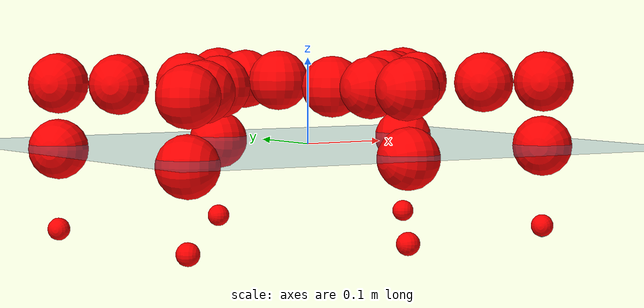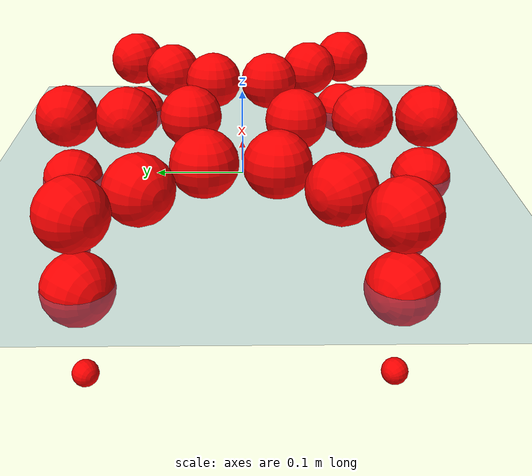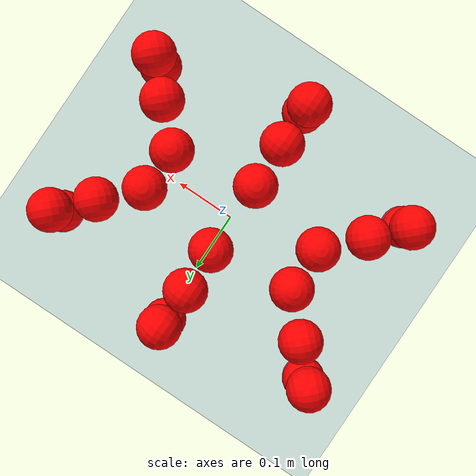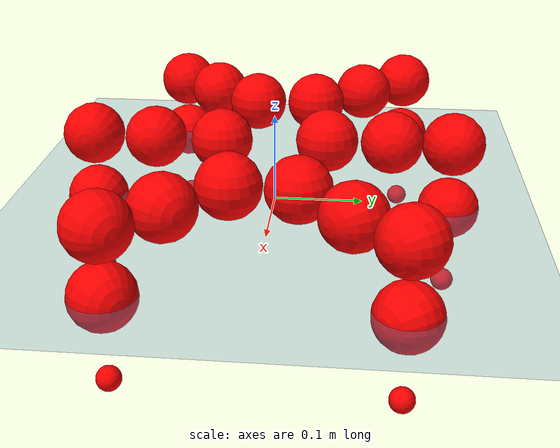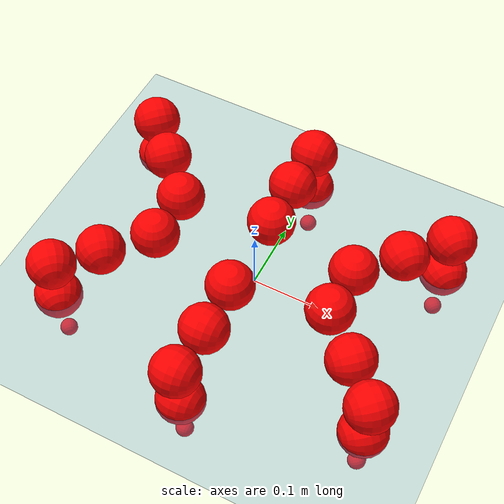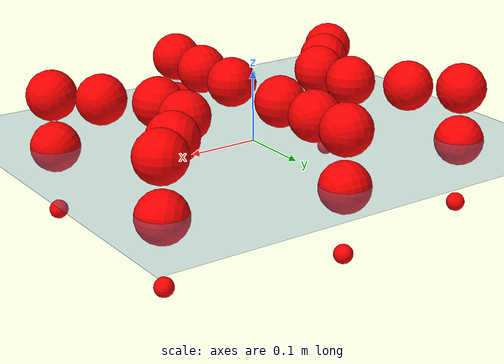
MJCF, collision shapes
<mujoco model="Golem">
  <compiler angle="radian" assetdir="assets" balanceinertia="true" inertiafromgeom="false"/>

  <option timestep="0.005" density="1.2" viscosity="2e-05"/>

  <size nkey="1"/>

  <visual>
    <quality shadowsize="8192"/>
    <map shadowclip="0.5"/>
  </visual>

  <default>
    <default class="/">
      <joint armature="0.01" damping="0.01" frictionloss="0.01"/>
      <geom contype="0" conaffinity="0" group="1" solref="-1000 -80"/>
      <site size="0.01 0.005 0.005" group="5"/>
      <general forcelimited="true" biastype="affine" gainprm="25" biasprm="0 -25 -0.5"/>
      <default class="visual">
        <geom type="mesh" group="2"/>
      </default>
      <default class="collision">
        <geom group="3"/>
      </default>
      <default class="foot">
        <geom size="0.01 0 0" condim="6" group="4" priority="1" solimp="0.015 1 0.01"/>
      </default>
      <default class="reward_collision_sphere">
        <geom group="5" rgba="1 0 0 1"/>
      </default>
    </default>
  </default>

  <asset>
    <texture type="skybox" colorspace="auto" name="//unnamed_texture_0" builtin="gradient" rgb1="0.95 0.95 0.95" rgb2="0.95 0.95 0.95" width="100" height="600"/>
    <texture type="2d" colorspace="auto" name="texplane" builtin="checker" rgb1="0.345 0.575 0.748" rgb2="0.345 0.575 0.748" markrgb="1 1 1" width="512" height="512"/>
    <material name="MatPlane" class="/" texture="texplane" texuniform="true" texrepeat="2 2" specular="0.9"/>
    <mesh name="body" class="/" file="body.stl" scale="0.001 0.001 0.001"/>
    <mesh name="coxa" class="/" file="coxa.stl" scale="0.001 0.001 0.001"/>
    <mesh name="femur" class="/" file="femur.stl" scale="0.001 0.001 0.001"/>
    <mesh name="tibia" class="/" file="tibia.stl" scale="0.001 0.001 0.001"/>
    <mesh name="tarsus" class="/" file="tarsus.stl" scale="0.001 0.001 0.001"/>
  </asset>

  <worldbody>
    <geom name="floor" class="/" size="100 100 0.125" type="plane" group="0" material="MatPlane"/>
    <light name="toplight_shadow" class="/" pos="0 0 5" dir="0.0990148 0.0990148 -0.990148" type="directional" ambient="0.04 0.04 0.04" diffuse="0.55 0.55 0.55" specular="0.12 0.12 0.12"/>
    <light name="toplight_fill" class="/" pos="0 0 5" dir="0.0990148 0.0990148 -0.990148" type="directional" castshadow="false" ambient="0.04 0.04 0.04" diffuse="0.3 0.3 0.3" specular="0.08 0.08 0.08"/>
    <body name="trunk" pos="-0.00245568 0.000187161 0.000119301" quat="0.999999 -0.000303348 -0.00023536 -0.00127203">
      <inertial pos="0.00157302 0.00220546 9.6021e-05" quat="0.999968 0.00705175 -0.00156519 -0.00329264" mass="2.3944" diaginertia="0.00473925 0.00133922 0.0148576"/>
      <joint name="//unnamed_joint_0" type="free"/>
      <geom name="//unnamed_geom_1" class="/" pos="0 0 0.06992" quat="1 0 0 0" type="mesh" rgba="0.9 0.9 0.9 1" mesh="body"/>
      <site name="imu" class="/" pos="0.110376 0.0135297 0.103043" size="0.00877103"/>
      <camera name="track" class="/" pos="0 -1.33911 0" quat="0.707107 0.707107 0 0" mode="trackcom"/>
      <camera name="ego_camera" class="/" pos="0.113003 0 0.10925" quat="-0.5 -0.5 0.5 0.5"/>
      <body name="coxa_RR" pos="-0.15517 -0.0529119 0.0704342" quat="0.381882 -0.000625176 0.000874433 -0.924211">
        <inertial pos="0.00200286 0.00079195 0.00116257" quat="0.999929 0.00916622 -0.00626631 0.00435249" mass="0.144001" diaginertia="0.00514966 0.00139251 0.0161702"/>
        <joint name="coxa_joint_RR" class="/" pos="0 0 0" axis="-0.00199772 0.00124281 -0.999997" range="-3.14133 3.09063" armature="0.00985987" damping="0.0172816" frictionloss="0.00889737"/>
        <geom name="//unnamed_geom_2" class="/" type="mesh" rgba="0.2 0.2 0.2 1" mesh="coxa"/>
        <geom name="//unnamed_geom_3" class="reward_collision_sphere" size="0.0350841" pos="-0.0260776 0 0"/>
        <body name="femur_RR" pos="0.0528913 0.00298686 -0.00266721" quat="0.500135 -0.499083 0.500037 0.500743">
          <inertial pos="0.00277745 0.0005269 -0.000759061" quat="0.999907 -0.00179715 -0.0134123 0.0019414" mass="0.137227" diaginertia="0.00504856 0.00136996 0.0156684"/>
          <joint name="femur_joint_RR" class="/" pos="0 0 0" axis="-0.00232056 9.20813e-06 -0.999997" stiffness="0.00950639" range="-3.10532 3.0991" armature="0.00886495" damping="0.0121243" frictionloss="0.00903506"/>
          <geom name="//unnamed_geom_4" class="/" type="mesh" rgba="0.9 0.9 0.9 1" mesh="femur"/>
          <geom name="//unnamed_geom_5" class="reward_collision_sphere" size="0.0350841"/>
          <body name="tibia_RR" pos="0.00204057 -0.0699695 0.00247879" quat="0.000785434 1 -0.000343568 -1.69832e-05">
            <inertial pos="-0.00254352 -0.000928759 0.000146455" quat="0.999994 0.0024825 0.000959275 0.00225618" mass="0.139803" diaginertia="0.00502383 0.00135867 0.0161577"/>
            <joint name="tibia_joint_RR" class="/" pos="0 0 0" axis="0.00456831 -0.0135781 0.999897" stiffness="0.00934786" range="-3.14827 3.12781" armature="0.00883185" damping="0.000543778" frictionloss="0.00901517"/>
            <geom name="//unnamed_geom_6" class="/" type="mesh" rgba="0.2 0.2 0.2 1" mesh="tibia"/>
            <geom name="//unnamed_geom_7" class="reward_collision_sphere" size="0.0350841"/>
            <body name="tarsus_RR" pos="0.0748262 0.00270479 -0.000104512" quat="1 -0.00078793 3.26891e-05 0.000342102">
              <inertial pos="0.0524059 0.000649048 -0.000333707" quat="0.499934 0.500911 0.499664 0.49949" mass="0.139361" diaginertia="0.00519912 0.00139358 0.0161298"/>
              <joint name="tarsus_joint_RR" class="/" pos="0 0 0" axis="0.000281348 -0.000600129 1" range="-3.14115 3.13832" armature="0.00839311" damping="0.0407962" frictionloss="0.00761501"/>
              <geom name="//unnamed_geom_8" class="/" type="mesh" rgba="0.9 0.9 0.9 1" mesh="tarsus"/>
              <geom name="foot_1" class="foot" size="0.00916976" pos="0.0973564 0 0" quat="0 -0.707107 0 0.707107"/>
              <geom name="//unnamed_geom_10" class="reward_collision_sphere" size="0.0350841"/>
              <geom name="//unnamed_geom_11" class="reward_collision_sphere" size="0.0131565" pos="0.0934448 0 0"/>
              <site name="foot_1" class="foot" pos="0.0973564 0 0" quat="0 -0.707107 0 0.707107" size="0.00877103"/>
            </body>
          </body>
        </body>
      </body>
      <body name="coxa_RM" pos="-0.00290932 -0.0872545 0.0683021" quat="0.707109 2.17078e-05 -1.03716e-05 -0.707104">
        <inertial pos="-0.00267375 0.000181991 0.00128686" quat="0.999996 0.000939406 -0.00196093 0.00174125" mass="0.138953" diaginertia="0.00506577 0.00141203 0.0161919"/>
        <joint name="coxa_joint_RM" class="/" pos="0 0 0" axis="0.000161282 0.000232664 -1" range="-3.08714 3.14347" armature="0.00987614" damping="0.0150854" frictionloss="0.00853289"/>
        <geom name="//unnamed_geom_12" class="/" type="mesh" rgba="0.2 0.2 0.2 1" mesh="coxa"/>
        <geom name="//unnamed_geom_13" class="reward_collision_sphere" size="0.0350841" pos="-0.0260776 0 0"/>
        <body name="femur_RM" pos="0.0497964 0.00218748 0.00127898" quat="0.500438 -0.499288 0.500208 0.500066">
          <inertial pos="-0.000564583 -0.00180432 0.000275943" quat="0.999918 0.00499986 -0.00503224 0.0106304" mass="0.132512" diaginertia="0.00475389 0.00131039 0.0152677"/>
          <joint name="femur_joint_RM" class="/" pos="0 0 0" axis="0.000686493 -0.00112994 -0.999999" range="-3.18978 3.152" armature="0.00861731" damping="0.0101013" frictionloss="0.00873088"/>
          <geom name="//unnamed_geom_14" class="/" type="mesh" rgba="0.9 0.9 0.9 1" mesh="femur"/>
          <geom name="//unnamed_geom_15" class="reward_collision_sphere" size="0.0350841"/>
          <body name="tibia_RM" pos="-0.00121135 -0.0727493 -0.000947634" quat="0.000299242 0.999999 0.00099158 -0.000582095">
            <inertial pos="-0.00241347 0.000133726 0.000756137" quat="0.999918 0.0094401 0.000555885 -0.00860176" mass="0.134278" diaginertia="0.0049726 0.0013097 0.0151999"/>
            <joint name="tibia_joint_RM" class="/" pos="0 0 0" axis="-0.00151103 -0.000446423 0.999999" range="-3.14193 3.13405" armature="0.00920146" damping="0" frictionloss="0.00907703"/>
            <geom name="//unnamed_geom_16" class="/" type="mesh" rgba="0.2 0.2 0.2 1" mesh="tibia"/>
            <geom name="//unnamed_geom_17" class="reward_collision_sphere" size="0.0350841"/>
            <body name="tarsus_RM" pos="0.0762819 0.000139163 -0.00209828" quat="0.999999 0.000437837 -0.00105445 -0.000676948">
              <inertial pos="0.051681 -0.00051993 0.000506577" quat="0.499995 0.499983 0.500016 0.500005" mass="0.133256" diaginertia="0.00502093 0.00132772 0.0159951"/>
              <joint name="tarsus_joint_RM" class="/" pos="0 0 0" axis="-0.0122517 0.00677539 0.999902" range="-3.18658 3.1881" armature="0.00798139" damping="0.00763586" frictionloss="0.0076939"/>
              <geom name="//unnamed_geom_18" class="/" type="mesh" rgba="0.9 0.9 0.9 1" mesh="tarsus"/>
              <geom name="foot_2" class="foot" size="0.00860746" pos="0.0973564 0 0" quat="0 -0.707107 0 0.707107"/>
              <geom name="//unnamed_geom_20" class="reward_collision_sphere" size="0.0350841"/>
              <geom name="//unnamed_geom_21" class="reward_collision_sphere" size="0.0131565" pos="0.0934448 0 0"/>
              <site name="foot_2" class="foot" pos="0.0973564 0 0" quat="0 -0.707107 0 0.707107" size="0.00877103"/>
            </body>
          </body>
        </body>
      </body>
      <body name="coxa_RF" pos="0.152003 -0.0526792 0.0707624" quat="0.924007 -0.000657243 -0.001082 -0.382374">
        <inertial pos="0.00279792 0.00272624 0.000245615" quat="0.999997 -0.000443094 0.00173297 0.00153383" mass="0.132636" diaginertia="0.00499934 0.00130645 0.0156093"/>
        <joint name="coxa_joint_RF" class="/" pos="0 0 0" axis="0.00183583 -0.00817872 -0.999965" range="-3.11704 3.08519" armature="0.00861976" damping="0.0281528" frictionloss="0.00837966"/>
        <geom name="//unnamed_geom_22" class="/" type="mesh" rgba="0.2 0.2 0.2 1" mesh="coxa"/>
        <geom name="//unnamed_geom_23" class="reward_collision_sphere" size="0.0350841" pos="-0.0260776 0 0"/>
        <body name="femur_RF" pos="0.0528157 -0.000120645 -0.000634173" quat="0.499998 -0.500927 0.499951 0.499122">
          <inertial pos="0.000546946 -0.00197116 0.00267853" quat="0.999907 -0.00547573 0.0120398 0.00318444" mass="0.133953" diaginertia="0.00481288 0.00130321 0.0145512"/>
          <joint name="femur_joint_RF" class="/" pos="0 0 0" axis="0.0112707 0.00510056 -0.999923" range="-3.12871 3.10445" armature="0.00995828" damping="0.00518738" frictionloss="0.00989299"/>
          <geom name="//unnamed_geom_24" class="/" type="mesh" rgba="0.9 0.9 0.9 1" mesh="femur"/>
          <geom name="//unnamed_geom_25" class="reward_collision_sphere" size="0.0350841"/>
          <body name="tibia_RF" pos="-0.0012452 -0.0704232 -0.00122299" quat="0.000553186 1 -0.000267376 0.00010611">
            <inertial pos="-0.000695411 5.72231e-05 -0.000710298" quat="0.999914 0.00553607 -0.0065174 -0.00989912" mass="0.132252" diaginertia="0.00473718 0.00131058 0.015506"/>
            <joint name="tibia_joint_RF" class="/" pos="0 0 0" axis="-0.0035642 0.00188074 0.999992" range="-3.14289 3.19268" armature="0.00841255" damping="0.00143421" frictionloss="0.00878689"/>
            <geom name="//unnamed_geom_26" class="/" type="mesh" rgba="0.2 0.2 0.2 1" mesh="tibia"/>
            <geom name="//unnamed_geom_27" class="reward_collision_sphere" size="0.0350841"/>
            <body name="tarsus_RF" pos="0.0748513 -0.00128435 0.00147184" quat="0.999999 0.000822443 -0.000892815 -0.000166846">
              <inertial pos="0.0526099 3.63935e-05 9.58284e-05" quat="0.501672 0.507933 0.495486 0.494795" mass="0.131415" diaginertia="0.00484809 0.00131301 0.0146607"/>
              <joint name="tarsus_joint_RF" class="/" pos="0 0 0" axis="-0.00126516 0.000862215 0.999999" range="-3.14271 3.14088" armature="0.00862629" damping="0.00753847" frictionloss="0.00962899"/>
              <geom name="//unnamed_geom_28" class="/" type="mesh" rgba="0.9 0.9 0.9 1" mesh="tarsus"/>
              <geom name="foot_3" class="foot" size="0.00956303" pos="0.0973564 0 0" quat="0 -0.707107 0 0.707107"/>
              <geom name="//unnamed_geom_30" class="reward_collision_sphere" size="0.0350841"/>
              <geom name="//unnamed_geom_31" class="reward_collision_sphere" size="0.0131565" pos="0.0934448 0 0"/>
              <site name="foot_3" class="foot" pos="0.0973564 0 0" quat="0 -0.707107 0 0.707107" size="0.00877103"/>
            </body>
          </body>
        </body>
      </body>
      <body name="coxa_LR" pos="-0.155759 0.0569096 0.0718389" quat="0.382577 0.00120875 -0.000371567 0.923923">
        <inertial pos="-8.74987e-05 -0.000758846 0.000134427" quat="0.999996 0.000850382 -0.00193472 0.0017722" mass="0.134089" diaginertia="0.00482516 0.0013378 0.0151777"/>
        <joint name="coxa_joint_LR" class="/" pos="0 0 0" axis="-0.00120315 -0.0161941 -0.999868" range="-3.08553 3.13788" armature="0.0082973" damping="0.012607" frictionloss="0.00899647"/>
        <geom name="//unnamed_geom_32" class="/" type="mesh" rgba="0.2 0.2 0.2 1" mesh="coxa"/>
        <geom name="//unnamed_geom_33" class="reward_collision_sphere" size="0.0350841" pos="-0.0260776 0 0"/>
        <body name="femur_LR" pos="0.0553011 -0.00196839 -0.00228937" quat="0.499932 -0.499904 0.4999 0.500264">
          <inertial pos="-0.000167042 0.000786949 0.000979559" quat="0.999995 -0.00290341 0.000523466 -0.000688406" mass="0.13507" diaginertia="0.00503935 0.00131753 0.0159209"/>
          <joint name="femur_joint_LR" class="/" pos="0 0 0" axis="-0.00374484 0.00564611 0.999977" range="-3.19485 3.19361" armature="0.00902454" damping="0" frictionloss="0.0089302"/>
          <geom name="//unnamed_geom_34" class="/" type="mesh" rgba="0.9 0.9 0.9 1" mesh="femur"/>
          <geom name="//unnamed_geom_35" class="reward_collision_sphere" size="0.0350841"/>
          <body name="tibia_LR" pos="-0.000615562 -0.0737655 -0.00188889" quat="6.68669e-05 1 -0.000145052 -0.00023163">
            <inertial pos="-0.00253838 0.000383921 -0.0025507" quat="0.999987 -8.40451e-05 0.00435248 0.00274497" mass="0.134889" diaginertia="0.00505888 0.00140939 0.0153319"/>
            <joint name="tibia_joint_LR" class="/" pos="0 0 0" axis="0.00173501 -0.00212099 -0.999996" range="-3.08624 3.19087" armature="0.00815385" damping="0.00258569" frictionloss="0.00867609"/>
            <geom name="//unnamed_geom_36" class="/" type="mesh" rgba="0.2 0.2 0.2 1" mesh="tibia"/>
            <geom name="//unnamed_geom_37" class="reward_collision_sphere" size="0.0350841"/>
            <body name="tarsus_LR" pos="0.0764215 0.000285488 0.000116664" quat="1 4.22497e-05 -0.000140772 -8.78979e-05">
              <inertial pos="0.0519164 0.000313853 -0.000312972" quat="0.500096 0.500525 0.499768 0.49961" mass="0.137729" diaginertia="0.00502436 0.0014302 0.0161279"/>
              <joint name="tarsus_joint_LR" class="/" pos="0 0 0" axis="-0.000284442 0.0139024 -0.999903" stiffness="0.0062726" range="-3.11931 3.08927" armature="0.0091786" damping="0.0270998" frictionloss="0.00989789"/>
              <geom name="//unnamed_geom_38" class="/" type="mesh" rgba="0.9 0.9 0.9 1" mesh="tarsus"/>
              <geom name="foot_4" class="foot" size="0.00872759" pos="0.0973564 0 0" quat="0.707107 0 -0.707107 0"/>
              <geom name="//unnamed_geom_40" class="reward_collision_sphere" size="0.0350841"/>
              <geom name="//unnamed_geom_41" class="reward_collision_sphere" size="0.0131565" pos="0.0934448 0 0"/>
              <site name="foot_4" class="foot" pos="0.0973564 0 0" quat="0.707107 0 -0.707107 0" size="0.00877103"/>
            </body>
          </body>
        </body>
      </body>
      <body name="coxa_LM" pos="-0.0012213 0.0847031 0.0718449" quat="0.706914 -0.000372758 -0.000277818 0.707299">
        <inertial pos="0.00301504 0.00250558 0.000350265" quat="1 0.000195201 0.000232973 0.00039569" mass="0.13557" diaginertia="0.00495614 0.00134831 0.0156524"/>
        <joint name="coxa_joint_LM" class="/" pos="0 0 0" axis="0.0049745 -0.000585713 -0.999987" range="-3.09965 3.0981" armature="0.00995701" damping="0.00458676" frictionloss="0.00958532"/>
        <geom name="//unnamed_geom_42" class="/" type="mesh" rgba="0.2 0.2 0.2 1" mesh="coxa"/>
        <geom name="//unnamed_geom_43" class="reward_collision_sphere" size="0.0350841" pos="-0.0260776 0 0"/>
        <body name="femur_LM" pos="0.0467613 0.00232861 -0.000343105" quat="0.500032 -0.500673 0.498863 0.500431">
          <inertial pos="-0.00221713 0.00159836 0.00106298" quat="0.999916 -0.00706249 -0.010183 0.0038619" mass="0.134003" diaginertia="0.00508147 0.00129677 0.0152868"/>
          <joint name="femur_joint_LM" class="/" pos="0 0 0" axis="5.20857e-05 1.07586e-05 1" stiffness="0.00690121" range="-3.129 3.1382" armature="0.00761227" damping="0" frictionloss="0.00864753"/>
          <geom name="//unnamed_geom_44" class="/" type="mesh" rgba="0.9 0.9 0.9 1" mesh="femur"/>
          <geom name="//unnamed_geom_45" class="reward_collision_sphere" size="0.0350841"/>
          <body name="tibia_LM" pos="-0.000983052 -0.0681372 -0.00219494" quat="1.20988e-05 1 6.61935e-05 -0.000119516">
            <inertial pos="-0.000237159 0.000586187 0.0014203" quat="1 -2.19002e-06 0.000241859 -0.000148239" mass="0.131064" diaginertia="0.00479925 0.00134886 0.0155409"/>
            <joint name="tibia_joint_LM" class="/" pos="0 0 0" axis="-0.00363425 0.0104053 -0.999939" range="-3.14261 3.18843" armature="0.00904956" damping="0" frictionloss="0.00790726"/>
            <geom name="//unnamed_geom_46" class="/" type="mesh" rgba="0.2 0.2 0.2 1" mesh="tibia"/>
            <geom name="//unnamed_geom_47" class="reward_collision_sphere" size="0.0350841"/>
            <body name="tarsus_LM" pos="0.0780907 -0.000760818 -0.000499991" quat="1 -0.000136956 -1.63293e-05 2.27563e-05">
              <inertial pos="0.0534426 0.000334998 -0.000252693" quat="0.502484 0.495188 0.504963 0.497304" mass="0.143964" diaginertia="0.00520729 0.00137861 0.0155457"/>
              <joint name="tarsus_joint_LM" class="/" pos="0 0 0" axis="0.00210804 0.00347106 -0.999992" stiffness="0.0124752" range="-3.13865 3.093" armature="0.00865237" damping="0.0202133" frictionloss="0.0087815"/>
              <geom name="//unnamed_geom_48" class="/" type="mesh" rgba="0.9 0.9 0.9 1" mesh="tarsus"/>
              <geom name="foot_5" class="foot" size="0.00895495" pos="0.0973564 0 0" quat="0.707107 0 -0.707107 0"/>
              <geom name="//unnamed_geom_50" class="reward_collision_sphere" size="0.0350841"/>
              <geom name="//unnamed_geom_51" class="reward_collision_sphere" size="0.0131565" pos="0.0934448 0 0"/>
              <site name="foot_5" class="foot" pos="0.0973564 0 0" quat="0.707107 0 -0.707107 0" size="0.00877103"/>
            </body>
          </body>
        </body>
      </body>
      <body name="coxa_LF" pos="0.154213 0.0551338 0.0708431" quat="0.923887 -5.63905e-05 8.39748e-05 0.382666">
        <inertial pos="-0.000242761 -0.000625746 9.44056e-05" quat="1 -0.000240851 -0.000165052 -0.000179704" mass="0.132035" diaginertia="0.00486728 0.00136514 0.0157904"/>
        <joint name="coxa_joint_LF" class="/" pos="0 0 0" axis="-0.00359619 -0.00935658 -0.99995" range="-3.15011 3.11896" armature="0.00872539" damping="0.0128475" frictionloss="0.00867409"/>
        <geom name="//unnamed_geom_52" class="/" type="mesh" rgba="0.2 0.2 0.2 1" mesh="coxa"/>
        <geom name="//unnamed_geom_53" class="reward_collision_sphere" size="0.0350841" pos="-0.0260776 0 0"/>
        <body name="femur_LF" pos="0.0503681 0.00279577 -0.00240874" quat="0.499945 -0.499941 0.500039 0.500075">
          <inertial pos="-0.00277675 0.000754385 0.000458551" quat="0.999997 -5.92261e-06 0.00206667 0.00105609" mass="0.135409" diaginertia="0.00487198 0.00127027 0.0149481"/>
          <joint name="femur_joint_LF" class="/" pos="0 0 0" axis="-0.0136609 0.00585651 0.99989" stiffness="0.00248102" range="-3.13721 3.08456" armature="0.00759455" damping="0.00161623" frictionloss="0.00835351"/>
          <geom name="//unnamed_geom_54" class="/" type="mesh" rgba="0.9 0.9 0.9 1" mesh="femur"/>
          <geom name="//unnamed_geom_55" class="reward_collision_sphere" size="0.0350841"/>
          <body name="tibia_LF" pos="-0.00238459 -0.0716457 0.00285289" quat="-0.000203008 1 -0.000211129 -1.79491e-05">
            <inertial pos="-0.000166701 0.00148257 -0.00105505" quat="0.999907 0.00334772 -0.013055 0.00189065" mass="0.132235" diaginertia="0.00493014 0.00136143 0.0155385"/>
            <joint name="tibia_joint_LF" class="/" pos="0 0 0" axis="-1.3793e-05 4.51548e-05 -1" stiffness="0.000608685" range="-3.12767 3.10782" armature="0.00769425" damping="0" frictionloss="0.00879963"/>
            <geom name="//unnamed_geom_56" class="/" type="mesh" rgba="0.2 0.2 0.2 1" mesh="tibia"/>
            <geom name="//unnamed_geom_57" class="reward_collision_sphere" size="0.0350841"/>
            <body name="tarsus_LF" pos="0.0779231 0.000711687 -0.000208341" quat="0.999999 0.000757861 -0.000833828 -0.00047914">
              <inertial pos="0.0550049 -0.00243763 -0.000475492" quat="0.499753 0.500331 0.499537 0.500379" mass="0.1305" diaginertia="0.00482965 0.00129939 0.0152603"/>
              <joint name="tarsus_joint_LF" class="/" pos="0 0 0" axis="-0.0061274 0.012409 -0.999904" range="-3.08504 3.12195" armature="0.0085703" damping="0.0236147" frictionloss="0.00853114"/>
              <geom name="//unnamed_geom_58" class="/" type="mesh" rgba="0.9 0.9 0.9 1" mesh="tarsus"/>
              <geom name="foot_6" class="foot" size="0.0078161" pos="0.0973564 0 0" quat="0.707107 0 -0.707107 0"/>
              <geom name="//unnamed_geom_60" class="reward_collision_sphere" size="0.0350841"/>
              <geom name="//unnamed_geom_61" class="reward_collision_sphere" size="0.0131565" pos="0.0934448 0 0"/>
              <site name="foot_6" class="foot" pos="0.0973564 0 0" quat="0.707107 0 -0.707107 0" size="0.00877103"/>
            </body>
          </body>
        </body>
      </body>
    </body>
  </worldbody>

  <contact>
    <pair class="/" geom1="floor" geom2="foot_1" name="//unnamed_contact_0"/>
    <pair class="/" geom1="floor" geom2="foot_2" name="//unnamed_contact_1"/>
    <pair class="/" geom1="floor" geom2="foot_3" name="//unnamed_contact_2"/>
    <pair class="/" geom1="floor" geom2="foot_4" name="//unnamed_contact_3"/>
    <pair class="/" geom1="floor" geom2="foot_5" name="//unnamed_contact_4"/>
    <pair class="/" geom1="floor" geom2="foot_6" name="//unnamed_contact_5"/>
  </contact>

  <actuator>
    <general name="coxa_joint_RR" class="/" joint="coxa_joint_RR" forcerange="-6.26217 6.26217" gainprm="21.7019" biasprm="0 -21.7019 -0.43095"/>
    <general name="femur_joint_RR" class="/" joint="femur_joint_RR" forcerange="-6.42836 6.42836" gainprm="21.7019" biasprm="0 -21.7019 -0.43095"/>
    <general name="tibia_joint_RR" class="/" joint="tibia_joint_RR" forcerange="-6.47417 6.47417" gainprm="21.7019" biasprm="0 -21.7019 -0.43095"/>
    <general name="tarsus_joint_RR" class="/" joint="tarsus_joint_RR" forcerange="-6.54819 6.54819" gainprm="21.7019" biasprm="0 -21.7019 -0.43095"/>
    <general name="coxa_joint_RM" class="/" joint="coxa_joint_RM" forcerange="-6.48429 6.48429" gainprm="21.7019" biasprm="0 -21.7019 -0.43095"/>
    <general name="femur_joint_RM" class="/" joint="femur_joint_RM" forcerange="-5.77817 5.77817" gainprm="21.7019" biasprm="0 -21.7019 -0.43095"/>
    <general name="tibia_joint_RM" class="/" joint="tibia_joint_RM" forcerange="-6.39165 6.39165" gainprm="21.7019" biasprm="0 -21.7019 -0.43095"/>
    <general name="tarsus_joint_RM" class="/" joint="tarsus_joint_RM" forcerange="-6.42834 6.42834" gainprm="21.7019" biasprm="0 -21.7019 -0.43095"/>
    <general name="coxa_joint_RF" class="/" joint="coxa_joint_RF" forcerange="-5.75761 5.75761" gainprm="21.7019" biasprm="0 -21.7019 -0.43095"/>
    <general name="femur_joint_RF" class="/" joint="femur_joint_RF" forcerange="-5.80323 5.80323" gainprm="21.7019" biasprm="0 -21.7019 -0.43095"/>
    <general name="tibia_joint_RF" class="/" joint="tibia_joint_RF" forcerange="-6.97701 6.97701" gainprm="21.7019" biasprm="0 -21.7019 -0.43095"/>
    <general name="tarsus_joint_RF" class="/" joint="tarsus_joint_RF" forcerange="-6.59236 6.59236" gainprm="21.7019" biasprm="0 -21.7019 -0.43095"/>
    <general name="coxa_joint_LR" class="/" joint="coxa_joint_LR" forcerange="-6.58939 6.58939" gainprm="21.7019" biasprm="0 -21.7019 -0.43095"/>
    <general name="femur_joint_LR" class="/" joint="femur_joint_LR" forcerange="-6.04054 6.04054" gainprm="21.7019" biasprm="0 -21.7019 -0.43095"/>
    <general name="tibia_joint_LR" class="/" joint="tibia_joint_LR" forcerange="-5.75989 5.75989" gainprm="21.7019" biasprm="0 -21.7019 -0.43095"/>
    <general name="tarsus_joint_LR" class="/" joint="tarsus_joint_LR" forcerange="-7.01956 7.01956" gainprm="21.7019" biasprm="0 -21.7019 -0.43095"/>
    <general name="coxa_joint_LM" class="/" joint="coxa_joint_LM" forcerange="-6.71821 6.71821" gainprm="21.7019" biasprm="0 -21.7019 -0.43095"/>
    <general name="femur_joint_LM" class="/" joint="femur_joint_LM" forcerange="-6.41147 6.41147" gainprm="21.7019" biasprm="0 -21.7019 -0.43095"/>
    <general name="tibia_joint_LM" class="/" joint="tibia_joint_LM" forcerange="-6.42447 6.42447" gainprm="21.7019" biasprm="0 -21.7019 -0.43095"/>
    <general name="tarsus_joint_LM" class="/" joint="tarsus_joint_LM" forcerange="-6.27498 6.27498" gainprm="21.7019" biasprm="0 -21.7019 -0.43095"/>
    <general name="coxa_joint_LF" class="/" joint="coxa_joint_LF" forcerange="-6.47166 6.47166" gainprm="21.7019" biasprm="0 -21.7019 -0.43095"/>
    <general name="femur_joint_LF" class="/" joint="femur_joint_LF" forcerange="-6.37579 6.37579" gainprm="21.7019" biasprm="0 -21.7019 -0.43095"/>
    <general name="tibia_joint_LF" class="/" joint="tibia_joint_LF" forcerange="-6.42187 6.42187" gainprm="21.7019" biasprm="0 -21.7019 -0.43095"/>
    <general name="tarsus_joint_LF" class="/" joint="tarsus_joint_LF" forcerange="-6.54152 6.54152" gainprm="21.7019" biasprm="0 -21.7019 -0.43095"/>
  </actuator>

  <sensor>
    <gyro site="imu" name="imu_angular_velocity"/>
    <velocimeter site="imu" name="imu_linear_velocity"/>
    <framelinvel objtype="site" objname="foot_1" name="foot_1_global_linear_velocity"/>
    <framelinvel objtype="site" objname="foot_2" name="foot_2_global_linear_velocity"/>
    <framelinvel objtype="site" objname="foot_3" name="foot_3_global_linear_velocity"/>
    <framelinvel objtype="site" objname="foot_4" name="foot_4_global_linear_velocity"/>
    <framelinvel objtype="site" objname="foot_5" name="foot_5_global_linear_velocity"/>
    <framelinvel objtype="site" objname="foot_6" name="foot_6_global_linear_velocity"/>
  </sensor>

  <keyframe>
    <key name="home" qpos="0 0 0.1457 1 0 0 0 0 0 0 0 0 0 0 0 0 0 0 0 0 0 0 0 0 0 0 0 0 0 0 0"/>
  </keyframe>
</mujoco>
